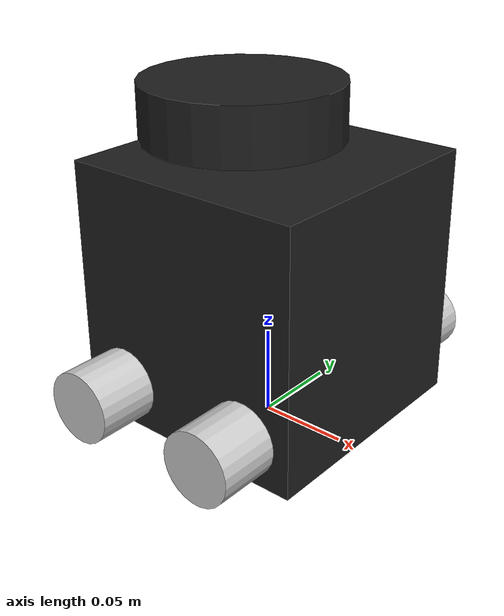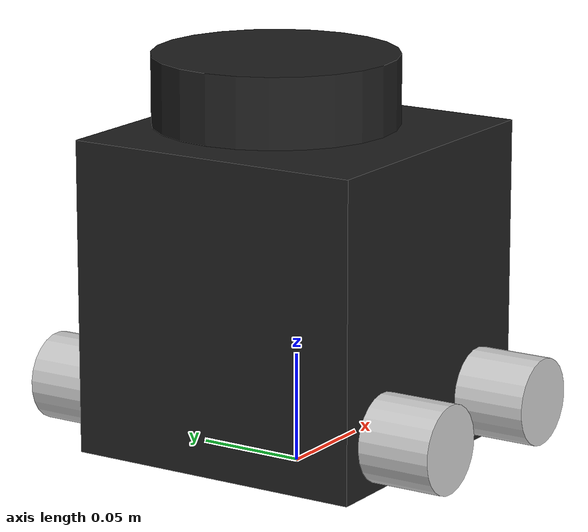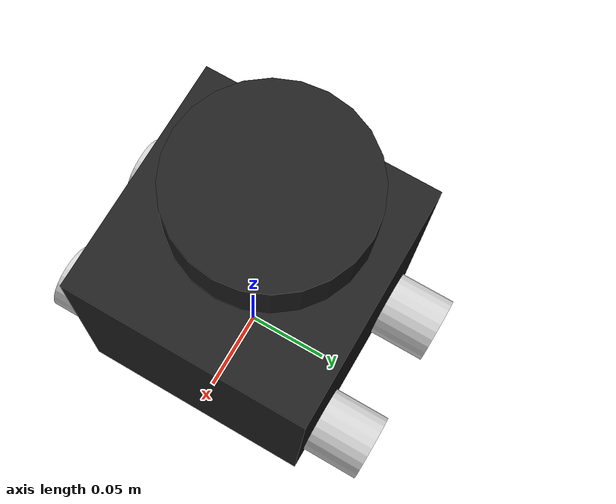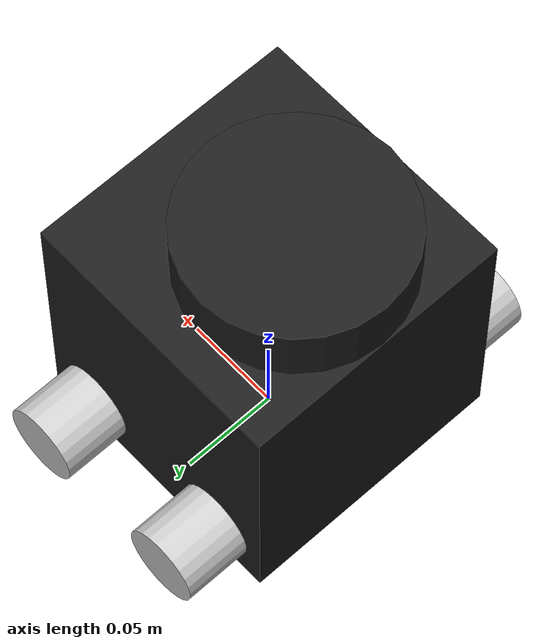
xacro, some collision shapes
<?xml version="1.0" ?>
<robot name="robot" xmlns:xacro="http://ros.org/wiki/xacro">
  <xacro:include filename="$(find robot_simulation)/urdf/common_properties.xacro"/>
  <xacro:include filename="$(find robot_simulation)/urdf/robot.gazebo.xacro"/>
  <xacro:include filename="$(find robot_simulation)/urdf/mecanum_description.urdf.xacro"/>
  <xacro:include filename="$(find robot_simulation)/urdf/mecanum_description.gazebo.xacro"/>

  <xacro:property name="PI" value="3.1415926535897931"/>

  <xacro:property name="b_diam" value="0.13755" />    <!-- base diameter -->
  <xacro:property name="b_height" value="0.14413" />  <!-- base height -->

  <link name="base_footprint"/>

  <joint name="base_joint" type="fixed">
    <parent link="base_footprint"/>
    <child link="base_link"/>
    <origin xyz="0.0 0.0 0.010" rpy="0 0 0"/>
  </joint>

  <link name="base_link">
    <visual>
      <origin xyz="0.0 0 0.0" rpy="0 0 0"/>
      <geometry>
        <mesh filename="package://robot_simulation/models/robot/meshes/bases/burger_base_4_servos.stl" scale="0.001 0.001 0.001"/>
      </geometry>
      <material name="light_black"/>
    </visual>

    <collision>
      <origin xyz="0.0 0.0 ${b_height/2}" rpy="0 0 0"/>
      <geometry>
        <box size="0.140 0.140 0.143"/>
      </geometry>
    </collision>

    <inertial>
      <origin xyz="0 0 0" rpy="0 0 0"/>
      <mass value="20.0"/>
      <inertia ixx="1.0" ixy="0.0" ixz="0.0"
               iyy="1.0" iyz="0.0"
               izz="1.0" />
    </inertial>
  </link>

  <xacro:mecanum_wheel1 base_name="base_link" base_diam="b_diam" suffix="rf" right="1"   front="1"/>
  <xacro:mecanum_wheel2 base_name="base_link" base_diam="b_diam" suffix="lf" right="-1"   front="1"/>
  <xacro:mecanum_wheel2 base_name="base_link" base_diam="b_diam" suffix="rb" right="1"   front="-1"/>
  <xacro:mecanum_wheel1 base_name="base_link" base_diam="b_diam" suffix="lb" right="-1"   front="-1"/>

  <!-- ROS 2 Control -->
  <ros2_control name="GazeboSystem" type="system">
    <hardware>
      <plugin>gazebo_ros2_control/GazeboSystem</plugin>
    </hardware>

    <!-- Right Front Wheel -->
    <joint name="mecanum_rf_joint">
      <command_interface name="velocity">
        <param name="min">-10</param>
        <param name="max">10</param>
      </command_interface>
      <state_interface name="position"/>
      <state_interface name="velocity"/>
    </joint>

    <!-- Left Front Wheel -->
    <joint name="mecanum_lf_joint">
      <command_interface name="velocity">
        <param name="min">-10</param>
        <param name="max">10</param>
      </command_interface>
      <state_interface name="position"/>
      <state_interface name="velocity"/>
    </joint>

    <!-- Right Back Wheel -->
    <joint name="mecanum_rb_joint">
      <command_interface name="velocity">
        <param name="min">-10</param>
        <param name="max">10</param>
      </command_interface>
      <state_interface name="position"/>
      <state_interface name="velocity"/>
    </joint>

    <!-- Left Back Wheel -->
    <joint name="mecanum_lb_joint">
      <command_interface name="velocity">
        <param name="min">-10</param>
        <param name="max">10</param>
      </command_interface>
      <state_interface name="position"/>
      <state_interface name="velocity"/>
    </joint>
  </ros2_control>

  <!-- Sensors block -->
  <joint name="imu_joint" type="fixed">
    <parent link="base_link"/>
    <child link="imu_link"/>
    <origin xyz="-0.032 0 0.068" rpy="0 0 0"/>
  </joint>

  <link name="imu_link"/>

  <joint name="scan_joint" type="fixed">
    <parent link="base_link"/>
    <child link="base_scan"/>
    <origin xyz="-0.032 0 0.172" rpy="0 0 0"/>
  </joint>

  <link name="base_scan">
    <visual>
      <origin xyz="0 0 0.0" rpy="0 0 0"/>
      <geometry>
        <mesh filename="package://robot_simulation/models/robot/meshes/sensors/lds.stl" scale="0.001 0.001 0.001"/>
      </geometry>
      <material name="dark"/>
    </visual>

    <collision>
      <origin xyz="0.015 0 -0.0065" rpy="0 0 0"/>
      <geometry>
        <cylinder length="0.0315" radius="0.055"/>
      </geometry>
    </collision>

    <inertial>
      <mass value="0.114" />
      <origin xyz="0 0 0" />
      <inertia ixx="0.001" ixy="0.0" ixz="0.0"
               iyy="0.001" iyz="0.0"
               izz="0.001" />
    </inertial>
  </link>

</robot>

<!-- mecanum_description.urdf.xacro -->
<robot name="mecanum_description" xmlns:xacro="http://ros.org/wiki/xacro">

  <!--Mecanum wheel propertires-->
  <xacro:property name="mw_m" value="0.086"/>   <!-- mecanum's mass -->
  <xacro:property name="mw_d" value="0.060"/> <!-- mecanum's diameter (whole) -->
  <xacro:property name="mw_w" value="0.034"/> <!-- mecanum's width -->
  <xacro:property name="r_num" value="8"/>    <!-- rollers number -->
  <xacro:property name="c_c" value="1.5"/>    <!-- coverage coefficient -->
  <xacro:property name="r_d" value="0.010"/> <!-- roller's diameter 20 -->
  <xacro:property name="r_w" value="0.030"/>  <!-- roller's width 22 -->

  <!-- Roller link macro -->
  <xacro:macro name="roller" params="num suffix">
    <link name="roller_${num}_${suffix}" >
      <visual>
        <origin xyz="0 0 0" rpy="0 0 0" />
        <geometry>
	  <cylinder radius="0" length="${r_w}"/>
        </geometry>
        <material name="black">
          <color rgba="0 0 0 1"/>
        </material>
      </visual>

      <collision>
        <origin xyz="0 0 0" rpy="0 0 0"/>
        <geometry>
	  <!-- cylinder radius="${r_d/2}" length="${r_w}"/ -->
          <mesh filename="package://robot_simulation/models/robot/meshes/wheels/roller_7_step.stl" scale="0.001 0.001 0.001"/>
        </geometry>
      </collision>

      <inertial>
        <origin xyz="0 0 0" rpy="0 0 0"/>
        <mass value="0.01"/>
        <inertia
	    ixx="0.001" ixy="0.0" ixz="0.0"
	    iyy="0.001" iyz="0.0"
	    izz="0.001"/>
      </inertial>
    </link>

  </xacro:macro>

 <!-- Mecanum wheel macro (type 1)-->
  <xacro:macro name="mecanum_wheel1" params="base_name base_diam suffix right front">

    <!-- Wheel inner part -->
    <link name="mecanum_inner_part_${suffix}">
      <visual>
        <origin xyz="0 0 0" rpy="0 0 0" />
	<geometry>
	  <!-- cylinder radius="${(mw_d - 2*r_d)/2}" length="${mw_w}"/ -->
          <mesh filename="package://robot_simulation/models/robot/meshes/wheels/mecanum1.stl" scale="0.001 0.001 0.001"/>
	</geometry>
        <material name="gray">
          <color rgba="0.8 0.8 0.8 1"/>
        </material>
      </visual>

      <collision>
        <origin xyz="0 0 0" rpy="0 0 0"/>
	<geometry>
	  <cylinder radius="${(mw_d - 2*r_d)/2}" length="${mw_w}"/>
	</geometry>
      </collision>

      <inertial>
        <origin xyz="0 0 0" rpy="0 0 0"/>
        <mass value="${mw_m}"/>
        <inertia
	    ixx="0.001" ixy="0.0" ixz="0.0"
	    iyy="0.001" iyz="0.0"
	    izz="0.001"/>
      </inertial>
    </link>

    <xacro:roller num="1" suffix="${suffix}"/>
    <joint name="mecanum_1r_${suffix}_joint" type="continuous">
      <axis xyz="0 0 1"/>
      <parent link="mecanum_inner_part_${suffix}"/>
      <child link="roller_1_${suffix}"/>
      <origin xyz="${(mw_d - r_d)/2 + 0.0005} 0 0" rpy="${-3*pi/4} 0 0"/> <!-- 0 deg clockwise roller-->
      <limit effort="100" velocity="100" />
      <joint_properties damping="0.0" friction="0.0" />
    </joint>

    <xacro:roller num="2" suffix="${suffix}"/>
    <joint name="mecanum_2r_${suffix}_joint" type="continuous">
      <axis xyz="0 0 1"/>
      <parent link="mecanum_inner_part_${suffix}"/>
      <child link="roller_2_${suffix}"/>
      <origin xyz="${((mw_d - r_d)/2 + 0.0005) * 0.7071} ${-((mw_d - r_d)/2 + 0.0005) * 0.7071} 0" rpy="0 ${3*pi/4} ${pi/4}"/> <!-- 45 deg clockwise roller-->
      <limit effort="100" velocity="100" />
      <joint_properties damping="0.0" friction="0.0" />
    </joint>

    <xacro:roller num="3" suffix="${suffix}"/>
    <joint name="mecanum_3r_${suffix}_joint" type="continuous">
      <axis xyz="0 0 1"/>
      <parent link="mecanum_inner_part_${suffix}"/>
      <child link="roller_3_${suffix}"/>
      <origin xyz="0 ${-((mw_d - r_d)/2 + 0.0005)} 0" rpy="0 ${3*pi/4} 0"/> <!-- 90 deg clockwise roller-->
      <limit effort="100" velocity="100" />
      <joint_properties damping="0.0" friction="0.0" />
    </joint>

    <xacro:roller num="4" suffix="${suffix}"/>
    <joint name="mecanum_4r_${suffix}_joint" type="continuous">
      <axis xyz="0 0 1"/>
      <parent link="mecanum_inner_part_${suffix}"/>
      <child link="roller_4_${suffix}"/>
      <origin xyz="${-((mw_d - r_d)/2 + 0.0005) * 0.7071} ${-((mw_d - r_d)/2 + 0.0005) * 0.7071} 0" rpy="${3*pi/4} 0 ${pi/4}"/> <!-- 135 deg roller-->
      <limit effort="100" velocity="100" />
      <joint_properties damping="0.0" friction="0.0" />
    </joint>

    <xacro:roller num="5" suffix="${suffix}"/>
    <joint name="mecanum_5r_${suffix}_joint" type="continuous">
      <axis xyz="0 0 1"/>
      <parent link="mecanum_inner_part_${suffix}"/>
      <child link="roller_5_${suffix}"/>
      <origin xyz="${-((mw_d - r_d)/2 + 0.0005)} 0 0" rpy="${3*pi/4} 0 0"/> <!-- 180 deg clockwise roller-->
      <limit effort="100" velocity="100" />
      <joint_properties damping="0.0" friction="0.0" />
    </joint>

    <xacro:roller num="6" suffix="${suffix}"/>
    <joint name="mecanum_6r_${suffix}_joint" type="continuous">
      <axis xyz="0 0 1"/>
      <parent link="mecanum_inner_part_${suffix}"/>
      <child link="roller_6_${suffix}"/>
      <origin xyz="${-((mw_d - r_d)/2 + 0.0005) * 0.7071} ${((mw_d - r_d)/2 + 0.0005) * 0.7071} 0" rpy="0 ${-3*pi/4} ${pi/4}"/> <!-- 225 deg clockwise roller-->
      <limit effort="100" velocity="100" />
      <joint_properties damping="0.0" friction="0.0" />
    </joint>

    <xacro:roller num="7" suffix="${suffix}"/>
    <joint name="mecanum_7r_${suffix}_joint" type="continuous">
      <axis xyz="0 0 1"/>
      <parent link="mecanum_inner_part_${suffix}"/>
      <child link="roller_7_${suffix}"/>
      <origin xyz="0 ${(mw_d - r_d)/2 + 0.0005} 0" rpy="0 ${-3*pi/4} 0"/> <!-- 270 deg clockwise roller-->
      <limit effort="100" velocity="100" />
      <joint_properties damping="0.0" friction="0.0" />
    </joint>

    <xacro:roller num="8" suffix="${suffix}"/>
    <joint name="mecanum_8r_${suffix}_joint" type="continuous">
      <axis xyz="0 0 1"/>
      <parent link="mecanum_inner_part_${suffix}"/>
      <child link="roller_8_${suffix}"/>
      <origin xyz="${((mw_d - r_d)/2 + 0.0005) * 0.7071} ${((mw_d - r_d)/2 + 0.0005) * 0.7071} 0" rpy="${-3*pi/4} 0 ${pi/4}"/> <!-- 315 deg clockwise roller-->
      <limit effort="100" velocity="100" />
      <joint_properties damping="0.0" friction="0.0" />
    </joint>

    <joint name="mecanum_${suffix}_joint" type="continuous">
      <axis xyz="0 0 1"/>
      <parent link="base_link"/>
      <child link="mecanum_inner_part_${suffix}"/>
      <origin xyz="${0.041 * front} ${(0.070 + mw_w/2) * -right} 0.024" rpy="${-pi/2} -0.175 0"/>
      <limit effort="100" velocity="100" />
      <joint_properties damping="0.0" friction="0.0" />
    </joint>

  </xacro:macro>

<!-- Mecanum wheel macro (type 2) -->
  <xacro:macro name="mecanum_wheel2" params="base_name base_diam suffix right front">

    <!-- Wheel inner part -->
    <link name="mecanum_inner_part_${suffix}">
      <visual>
        <origin xyz="0 0 0" rpy="0 0 0" />
	<geometry>
	  <!-- cylinder radius="${(mw_d - 2*r_d)/2}" length="${mw_w}"/ -->
          <mesh filename="package://robot_simulation/models/robot/meshes/wheels/mecanum2.stl" scale="0.001 0.001 0.001"/>
	</geometry>
        <material name="gray">
          <color rgba="0.8 0.8 0.8 1"/>
        </material>
      </visual>

      <collision>
        <origin xyz="0 0 0" rpy="0 0 0"/>
	<geometry>
	  <cylinder radius="${(mw_d - 2*r_d)/2}" length="${mw_w}"/>
	</geometry>
      </collision>

      <inertial>
        <origin xyz="0 0 0" rpy="0 0 0"/>
        <mass value="${mw_m}"/>
        <inertia
	    ixx="0.001" ixy="0.0" ixz="0.0"
	    iyy="0.001" iyz="0.0"
	    izz="0.001"/>
      </inertial>
    </link>

    <xacro:roller num="1" suffix="${suffix}"/>
    <joint name="mecanum_1r_${suffix}_joint" type="continuous">
      <axis xyz="0 0 1"/>
      <parent link="mecanum_inner_part_${suffix}"/>
      <child link="roller_1_${suffix}"/>
      <origin xyz="${(mw_d - r_d)/2 + 0.0005} 0 0" rpy="${-pi/4} 0 0"/> <!-- 0 deg clockwise roller-->
      <limit effort="100" velocity="100" />
      <joint_properties damping="0.0" friction="0.0" />
    </joint>

    <xacro:roller num="2" suffix="${suffix}"/>
    <joint name="mecanum_2r_${suffix}_joint" type="continuous">
      <axis xyz="0 0 1"/>
      <parent link="mecanum_inner_part_${suffix}"/>
      <child link="roller_2_${suffix}"/>
      <origin xyz="${((mw_d - r_d)/2 + 0.0005) * 0.7071} ${-((mw_d - r_d)/2 + 0.0005) * 0.7071} 0" rpy="0 ${pi/4} ${pi/4}"/> <!-- 45 deg clockwise roller-->
      <limit effort="100" velocity="100" />
      <joint_properties damping="0.0" friction="0.0" />
    </joint>

    <xacro:roller num="3" suffix="${suffix}"/>
    <joint name="mecanum_3r_${suffix}_joint" type="continuous">
      <axis xyz="0 0 1"/>
      <parent link="mecanum_inner_part_${suffix}"/>
      <child link="roller_3_${suffix}"/>
      <origin xyz="0 ${-((mw_d - r_d)/2 + 0.0005)} 0" rpy="0 ${pi/4} 0"/> <!-- 90 deg clockwise roller-->
      <limit effort="100" velocity="100" />
      <joint_properties damping="0.0" friction="0.0" />
    </joint>

    <xacro:roller num="4" suffix="${suffix}"/>
    <joint name="mecanum_4r_${suffix}_joint" type="continuous">
      <axis xyz="0 0 1"/>
      <parent link="mecanum_inner_part_${suffix}"/>
      <child link="roller_4_${suffix}"/>
      <origin xyz="${-((mw_d - r_d)/2 + 0.0005) * 0.7071} ${-((mw_d - r_d)/2 + 0.0005) * 0.7071} 0" rpy="${pi/4} 0 ${pi/4}"/> <!-- 135 deg roller-->
      <limit effort="100" velocity="100" />
      <joint_properties damping="0.0" friction="0.0" />
    </joint>

    <xacro:roller num="5" suffix="${suffix}"/>
    <joint name="mecanum_5r_${suffix}_joint" type="continuous">
      <axis xyz="0 0 1"/>
      <parent link="mecanum_inner_part_${suffix}"/>
      <child link="roller_5_${suffix}"/>
      <origin xyz="${-((mw_d - r_d)/2 + 0.0005)} 0 0" rpy="${pi/4} 0 0"/> <!-- 180 deg clockwise roller-->
      <limit effort="100" velocity="100" />
      <joint_properties damping="0.0" friction="0.0" />
    </joint>

    <xacro:roller num="6" suffix="${suffix}"/>
    <joint name="mecanum_6r_${suffix}_joint" type="continuous">
      <axis xyz="0 0 1"/>
      <parent link="mecanum_inner_part_${suffix}"/>
      <child link="roller_6_${suffix}"/>
      <origin xyz="${-((mw_d - r_d)/2 + 0.0005) * 0.7071} ${((mw_d - r_d)/2 + 0.0005) * 0.7071} 0" rpy="0 ${-pi/4} ${pi/4}"/> <!-- 225 deg clockwise roller-->
      <limit effort="100" velocity="100" />
      <joint_properties damping="0.0" friction="0.0" />
    </joint>

    <xacro:roller num="7" suffix="${suffix}"/>
    <joint name="mecanum_7r_${suffix}_joint" type="continuous">
      <axis xyz="0 0 1"/>
      <parent link="mecanum_inner_part_${suffix}"/>
      <child link="roller_7_${suffix}"/>
      <origin xyz="0 ${(mw_d - r_d)/2 + 0.0005} 0" rpy="0 ${-pi/4} 0"/> <!-- 270 deg clockwise roller-->
      <limit effort="100" velocity="100" />
      <joint_properties damping="0.0" friction="0.0" />
    </joint>

    <xacro:roller num="8" suffix="${suffix}"/>
    <joint name="mecanum_8r_${suffix}_joint" type="continuous">
      <axis xyz="0 0 1"/>
      <parent link="mecanum_inner_part_${suffix}"/>
      <child link="roller_8_${suffix}"/>
      <origin xyz="${((mw_d - r_d)/2 + 0.0005) * 0.7071} ${((mw_d - r_d)/2 + 0.0005) * 0.7071} 0" rpy="${-pi/4} 0 ${pi/4}"/> <!-- 315 deg clockwise roller-->
      <limit effort="100" velocity="100" />
      <joint_properties damping="0.0" friction="0.0" />
    </joint>

    <joint name="mecanum_${suffix}_joint" type="continuous">
      <axis xyz="0 0 1"/>
      <parent link="base_link"/>
      <child link="mecanum_inner_part_${suffix}"/>
      <origin xyz="${0.041 * front} ${(0.070 + mw_w/2) * -right} 0.024" rpy="${-pi/2} 0.175 0"/>
      <limit effort="100" velocity="100" />
      <joint_properties damping="0.0" friction="0.0" />
    </joint>

  </xacro:macro>

</robot>
